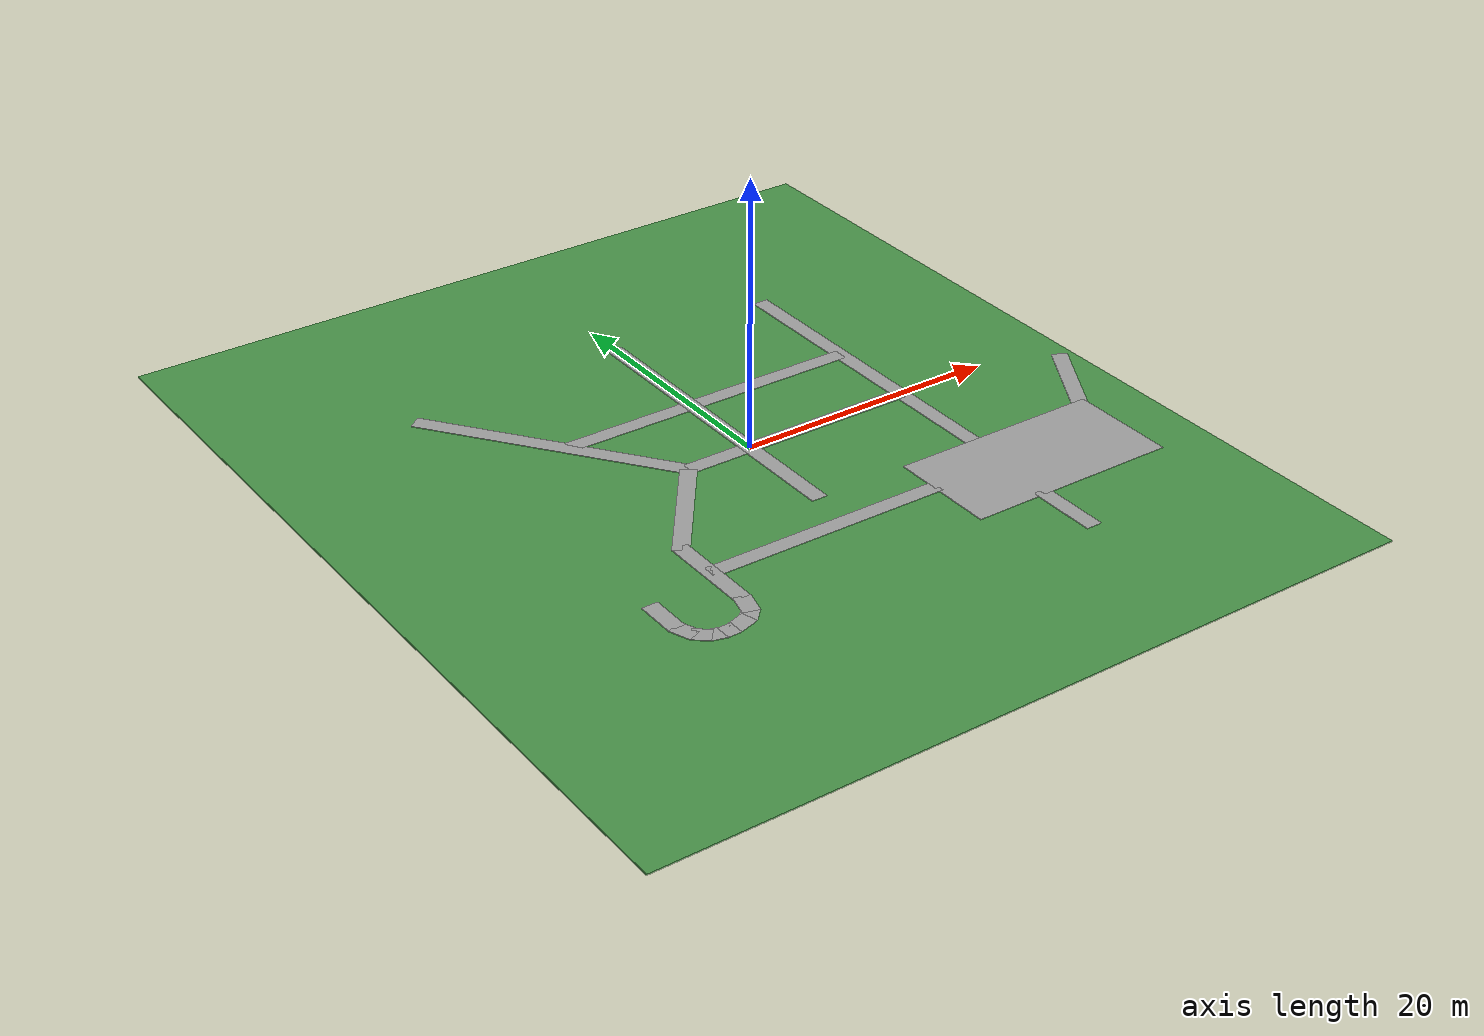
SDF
<?xml version="1.0" ?>
<sdf version="1.8">
  <world name="campus_sidewalk">

    <!-- 1. SIMULATION PHYSICS & SYSTEM PLUGINS     -->
    <physics name="1ms" type="ignored">
      <max_step_size>0.001</max_step_size>
      <real_time_factor>1.0</real_time_factor>
    </physics>

    <plugin filename="ignition-gazebo-physics-system" name="ignition::gazebo::systems::Physics"/>
    <plugin filename="ignition-gazebo-user-commands-system" name="ignition::gazebo::systems::UserCommands"/>
    <plugin filename="ignition-gazebo-scene-broadcaster-system" name="ignition::gazebo::systems::SceneBroadcaster"/>
    <plugin filename="ignition-gazebo-sensors-system" name="ignition::gazebo::systems::Sensors">
      <render_engine>ogre2</render_engine>
    </plugin>

    <!-- 2. LIGHTING & SUN                          -->
    <light type="directional" name="sun">
      <cast_shadows>true</cast_shadows>
      <pose>0 0 10 0 0 0</pose>
      <diffuse>0.8 0.8 0.8 1</diffuse>
      <specular>0.2 0.2 0.2 1</specular>
      <attenuation>
        <range>1000</range>
        <constant>0.9</constant>
        <linear>0.01</linear>
        <quadratic>0.001</quadratic>
      </attenuation>
      <direction>-0.5 0.1 -0.9</direction>
    </light>

    <!-- 3. GRASS MODEL                             -->
    <model name="grass_network">
      <static>true</static>

      <link name="grass_patch_0">
        <pose>-1.5000 0.0000 0.0 0 0 0</pose>
        <collision name="col">
          <pose>0 0 -0.0500 0 0 0</pose>
          <geometry>
            <box><size>57.0000 66.0000 0.1000</size></box>
          </geometry>
        </collision>
        <visual name="vis">
          <pose>0 0 -0.0500 0 0 0</pose>
          <geometry>
            <box><size>57.0000 66.0000 0.1000</size></box>
          </geometry>
          <material>
            <ambient>0.3 0.6 0.3 1</ambient>
            <diffuse>0.3 0.6 0.3 1</diffuse>
          </material>
          <plugin filename="ignition-gazebo-label-system" name="ignition::gazebo::systems::Label">
            <label>2</label> <!-- 2 = Grass -->
          </plugin>
        </visual>
      </link>
    </model>

    <!-- 4. SIDEWALK NETWORK                        -->
    <model name="sidewalk_network">
      <static>true</static>

      <!-- Segment 0: Length 25.00m, Width 1.20m, Height 0.05m -->
      <link name="segment_0">
        <pose>0.0000 -8.0000 0.0 0 0 1.5708</pose>
        <collision name="col">
          <pose>12.5000 0 0.0250 0 0 0</pose>
          <geometry>
            <box><size>25.0000 1.2000 0.0500</size></box>
          </geometry>
        </collision>
        <visual name="vis">
          <pose>12.5000 0 0.0250 0 0 0</pose>
          <geometry>
            <box><size>25.0000 1.2000 0.0500</size></box>
          </geometry>
          <material>
            <ambient>0.65 0.65 0.65 1</ambient>
            <diffuse>0.65 0.65 0.65 1</diffuse>
          </material>
          <plugin filename="ignition-gazebo-label-system" name="ignition::gazebo::systems::Label">
            <label>1</label> <!-- 1 = Sidewalk -->
          </plugin>
        </visual>
      </link>

      <!-- Segment 1: Length 18.00m, Width 1.20m, Height 0.05m -->
      <link name="segment_1">
        <pose>-5.0000 0.0000 0.0 0 0 0.0000</pose>
        <collision name="col">
          <pose>9.0000 0 0.0250 0 0 0</pose>
          <geometry>
            <box><size>18.0000 1.2000 0.0500</size></box>
          </geometry>
        </collision>
        <visual name="vis">
          <pose>9.0000 0 0.0250 0 0 0</pose>
          <geometry>
            <box><size>18.0000 1.2000 0.0500</size></box>
          </geometry>
          <material>
            <ambient>0.65 0.65 0.65 1</ambient>
            <diffuse>0.65 0.65 0.65 1</diffuse>
          </material>
          <plugin filename="ignition-gazebo-label-system" name="ignition::gazebo::systems::Label">
            <label>1</label> <!-- 1 = Sidewalk -->
          </plugin>
        </visual>
      </link>

      <!-- Segment 2: Length 10.00m, Width 1.20m, Height 0.05m -->
      <link name="segment_2">
        <pose>-5.0000 0.0000 0.0 0 0 -2.2143</pose>
        <collision name="col">
          <pose>5.0000 0 0.0250 0 0 0</pose>
          <geometry>
            <box><size>10.0000 1.2000 0.0500</size></box>
          </geometry>
        </collision>
        <visual name="vis">
          <pose>5.0000 0 0.0250 0 0 0</pose>
          <geometry>
            <box><size>10.0000 1.2000 0.0500</size></box>
          </geometry>
          <material>
            <ambient>0.65 0.65 0.65 1</ambient>
            <diffuse>0.65 0.65 0.65 1</diffuse>
          </material>
          <plugin filename="ignition-gazebo-label-system" name="ignition::gazebo::systems::Label">
            <label>1</label> <!-- 1 = Sidewalk -->
          </plugin>
        </visual>
      </link>

      <!-- Segment 3: Length 20.00m, Width 1.20m, Height 0.05m -->
      <link name="segment_3">
        <pose>-5.0000 0.0000 0.0 0 0 2.2143</pose>
        <collision name="col">
          <pose>10.0000 0 0.0250 0 0 0</pose>
          <geometry>
            <box><size>20.0000 1.2000 0.0500</size></box>
          </geometry>
        </collision>
        <visual name="vis">
          <pose>10.0000 0 0.0250 0 0 0</pose>
          <geometry>
            <box><size>20.0000 1.2000 0.0500</size></box>
          </geometry>
          <material>
            <ambient>0.65 0.65 0.65 1</ambient>
            <diffuse>0.65 0.65 0.65 1</diffuse>
          </material>
          <plugin filename="ignition-gazebo-label-system" name="ignition::gazebo::systems::Label">
            <label>1</label> <!-- 1 = Sidewalk -->
          </plugin>
        </visual>
      </link>

      <!-- Segment 4: Length 7.00m, Width 1.20m, Height 0.05m -->
      <link name="segment_4">
        <pose>-10.8510 -14.6075 0.0 0 0 1.5708</pose>
        <collision name="col">
          <pose>3.5000 0 0.0250 0 0 0</pose>
          <geometry>
            <box><size>7.0000 1.2000 0.0500</size></box>
          </geometry>
        </collision>
        <visual name="vis">
          <pose>3.5000 0 0.0250 0 0 0</pose>
          <geometry>
            <box><size>7.0000 1.2000 0.0500</size></box>
          </geometry>
          <material>
            <ambient>0.65 0.65 0.65 1</ambient>
            <diffuse>0.65 0.65 0.65 1</diffuse>
          </material>
          <plugin filename="ignition-gazebo-label-system" name="ignition::gazebo::systems::Label">
            <label>1</label> <!-- 1 = Sidewalk -->
          </plugin>
        </visual>
      </link>

      <!-- Segment 5: Length 23.00m, Width 1.20m, Height 0.05m -->
      <link name="segment_5">
        <pose>-10.0000 7.0000 0.0 0 0 0.0000</pose>
        <collision name="col">
          <pose>11.5000 0 0.0250 0 0 0</pose>
          <geometry>
            <box><size>23.0000 1.2000 0.0500</size></box>
          </geometry>
        </collision>
        <visual name="vis">
          <pose>11.5000 0 0.0250 0 0 0</pose>
          <geometry>
            <box><size>23.0000 1.2000 0.0500</size></box>
          </geometry>
          <material>
            <ambient>0.65 0.65 0.65 1</ambient>
            <diffuse>0.65 0.65 0.65 1</diffuse>
          </material>
          <plugin filename="ignition-gazebo-label-system" name="ignition::gazebo::systems::Label">
            <label>1</label> <!-- 1 = Sidewalk -->
          </plugin>
        </visual>
      </link>

      <!-- Segment 6: Length 25.00m, Width 1.20m, Height 0.05m -->
      <link name="segment_6">
        <pose>13.0000 -8.0000 0.0 0 0 1.5708</pose>
        <collision name="col">
          <pose>12.5000 0 0.0250 0 0 0</pose>
          <geometry>
            <box><size>25.0000 1.2000 0.0500</size></box>
          </geometry>
        </collision>
        <visual name="vis">
          <pose>12.5000 0 0.0250 0 0 0</pose>
          <geometry>
            <box><size>25.0000 1.2000 0.0500</size></box>
          </geometry>
          <material>
            <ambient>0.65 0.65 0.65 1</ambient>
            <diffuse>0.65 0.65 0.65 1</diffuse>
          </material>
          <plugin filename="ignition-gazebo-label-system" name="ignition::gazebo::systems::Label">
            <label>1</label> <!-- 1 = Sidewalk -->
          </plugin>
        </visual>
      </link>

      <!-- Segment 7: Length 1.75m, Width 1.20m, Height 0.05m -->
      <link name="segment_7">
        <pose>-10.8014 -14.4424 0.0 0 0 -1.8282</pose>
        <collision name="col">
          <pose>0.8739 0 0.0250 0 0 0</pose>
          <geometry>
            <box><size>1.7477 1.2000 0.0500</size></box>
          </geometry>
        </collision>
        <visual name="vis">
          <pose>0.8739 0 0.0250 0 0 0</pose>
          <geometry>
            <box><size>1.7477 1.2000 0.0500</size></box>
          </geometry>
          <material>
            <ambient>0.65 0.65 0.65 1</ambient>
            <diffuse>0.65 0.65 0.65 1</diffuse>
          </material>
          <plugin filename="ignition-gazebo-label-system" name="ignition::gazebo::systems::Label">
            <label>1</label> <!-- 1 = Sidewalk -->
          </plugin>
        </visual>
      </link>

      <!-- Segment 8: Length 1.21m, Width 1.20m, Height 0.05m -->
      <link name="segment_8">
        <pose>-11.0945 -15.8603 0.0 0 0 -2.3440</pose>
        <collision name="col">
          <pose>0.6068 0 0.0250 0 0 0</pose>
          <geometry>
            <box><size>1.2136 1.2000 0.0500</size></box>
          </geometry>
        </collision>
        <visual name="vis">
          <pose>0.6068 0 0.0250 0 0 0</pose>
          <geometry>
            <box><size>1.2136 1.2000 0.0500</size></box>
          </geometry>
          <material>
            <ambient>0.65 0.65 0.65 1</ambient>
            <diffuse>0.65 0.65 0.65 1</diffuse>
          </material>
          <plugin filename="ignition-gazebo-label-system" name="ignition::gazebo::systems::Label">
            <label>1</label> <!-- 1 = Sidewalk -->
          </plugin>
        </visual>
      </link>

      <!-- Segment 9: Length 1.00m, Width 1.20m, Height 0.05m -->
      <link name="segment_9">
        <pose>-13.0000 -17.0000 0.0 0 0 3.1416</pose>
        <collision name="col">
          <pose>0.5000 0 0.0250 0 0 0</pose>
          <geometry>
            <box><size>1.0000 1.2000 0.0500</size></box>
          </geometry>
        </collision>
        <visual name="vis">
          <pose>0.5000 0 0.0250 0 0 0</pose>
          <geometry>
            <box><size>1.0000 1.2000 0.0500</size></box>
          </geometry>
          <material>
            <ambient>0.65 0.65 0.65 1</ambient>
            <diffuse>0.65 0.65 0.65 1</diffuse>
          </material>
          <plugin filename="ignition-gazebo-label-system" name="ignition::gazebo::systems::Label">
            <label>1</label> <!-- 1 = Sidewalk -->
          </plugin>
        </visual>
      </link>

      <!-- Segment 10: Length 1.33m, Width 1.20m, Height 0.05m -->
      <link name="segment_10">
        <pose>-15.6686 -16.0029 0.0 0 0 -0.7102</pose>
        <collision name="col">
          <pose>0.6637 0 0.0250 0 0 0</pose>
          <geometry>
            <box><size>1.3274 1.2000 0.0500</size></box>
          </geometry>
        </collision>
        <visual name="vis">
          <pose>0.6637 0 0.0250 0 0 0</pose>
          <geometry>
            <box><size>1.3274 1.2000 0.0500</size></box>
          </geometry>
          <material>
            <ambient>0.65 0.65 0.65 1</ambient>
            <diffuse>0.65 0.65 0.65 1</diffuse>
          </material>
          <plugin filename="ignition-gazebo-label-system" name="ignition::gazebo::systems::Label">
            <label>1</label> <!-- 1 = Sidewalk -->
          </plugin>
        </visual>
      </link>

      <!-- Segment 11: Length 1.59m, Width 1.20m, Height 0.05m -->
      <link name="segment_11">
        <pose>-15.4727 -16.2787 0.0 0 0 1.9345</pose>
        <collision name="col">
          <pose>0.7951 0 0.0250 0 0 0</pose>
          <geometry>
            <box><size>1.5902 1.2000 0.0500</size></box>
          </geometry>
        </collision>
        <visual name="vis">
          <pose>0.7951 0 0.0250 0 0 0</pose>
          <geometry>
            <box><size>1.5902 1.2000 0.0500</size></box>
          </geometry>
          <material>
            <ambient>0.65 0.65 0.65 1</ambient>
            <diffuse>0.65 0.65 0.65 1</diffuse>
          </material>
          <plugin filename="ignition-gazebo-label-system" name="ignition::gazebo::systems::Label">
            <label>1</label> <!-- 1 = Sidewalk -->
          </plugin>
        </visual>
      </link>

      <!-- Segment 12: Length 3.00m, Width 1.20m, Height 0.05m -->
      <link name="segment_12">
        <pose>-16.0000 -15.0000 0.0 0 0 1.5708</pose>
        <collision name="col">
          <pose>1.5000 0 0.0250 0 0 0</pose>
          <geometry>
            <box><size>3.0000 1.2000 0.0500</size></box>
          </geometry>
        </collision>
        <visual name="vis">
          <pose>1.5000 0 0.0250 0 0 0</pose>
          <geometry>
            <box><size>3.0000 1.2000 0.0500</size></box>
          </geometry>
          <material>
            <ambient>0.65 0.65 0.65 1</ambient>
            <diffuse>0.65 0.65 0.65 1</diffuse>
          </material>
          <plugin filename="ignition-gazebo-label-system" name="ignition::gazebo::systems::Label">
            <label>1</label> <!-- 1 = Sidewalk -->
          </plugin>
        </visual>
      </link>

      <!-- Segment 13: Length 16.00m, Width 8.10m, Height 0.05m -->
      <link name="segment_13">
        <pose>7.0000 -12.0000 0.0 0 0 0.0000</pose>
        <collision name="col">
          <pose>8.0000 0 0.0250 0 0 0</pose>
          <geometry>
            <box><size>16.0000 8.1000 0.0500</size></box>
          </geometry>
        </collision>
        <visual name="vis">
          <pose>8.0000 0 0.0250 0 0 0</pose>
          <geometry>
            <box><size>16.0000 8.1000 0.0500</size></box>
          </geometry>
          <material>
            <ambient>0.65 0.65 0.65 1</ambient>
            <diffuse>0.65 0.65 0.65 1</diffuse>
          </material>
          <plugin filename="ignition-gazebo-label-system" name="ignition::gazebo::systems::Label">
            <label>1</label> <!-- 1 = Sidewalk -->
          </plugin>
        </visual>
      </link>

      <!-- Segment 14: Length 8.06m, Width 1.20m, Height 0.05m -->
      <link name="segment_14">
        <pose>22.0000 -9.0000 0.0 0 0 1.0517</pose>
        <collision name="col">
          <pose>4.0312 0 0.0250 0 0 0</pose>
          <geometry>
            <box><size>8.0623 1.2000 0.0500</size></box>
          </geometry>
        </collision>
        <visual name="vis">
          <pose>4.0312 0 0.0250 0 0 0</pose>
          <geometry>
            <box><size>8.0623 1.2000 0.0500</size></box>
          </geometry>
          <material>
            <ambient>0.65 0.65 0.65 1</ambient>
            <diffuse>0.65 0.65 0.65 1</diffuse>
          </material>
          <plugin filename="ignition-gazebo-label-system" name="ignition::gazebo::systems::Label">
            <label>1</label> <!-- 1 = Sidewalk -->
          </plugin>
        </visual>
      </link>

      <!-- Segment 15: Length 1.58m, Width 1.22m, Height 0.05m -->
      <link name="segment_15">
        <pose>-11.6855 -16.5632 0.0 0 0 -2.8495</pose>
        <collision name="col">
          <pose>0.7896 0 0.0250 0 0 0</pose>
          <geometry>
            <box><size>1.5793 1.2200 0.0500</size></box>
          </geometry>
        </collision>
        <visual name="vis">
          <pose>0.7896 0 0.0250 0 0 0</pose>
          <geometry>
            <box><size>1.5793 1.2200 0.0500</size></box>
          </geometry>
          <material>
            <ambient>0.65 0.65 0.65 1</ambient>
            <diffuse>0.65 0.65 0.65 1</diffuse>
          </material>
          <plugin filename="ignition-gazebo-label-system" name="ignition::gazebo::systems::Label">
            <label>1</label> <!-- 1 = Sidewalk -->
          </plugin>
        </visual>
      </link>

      <!-- Segment 16: Length 1.11m, Width 1.20m, Height 0.05m -->
      <link name="segment_16">
        <pose>-14.8953 -16.7384 0.0 0 0 -0.2626</pose>
        <collision name="col">
          <pose>0.5561 0 0.0250 0 0 0</pose>
          <geometry>
            <box><size>1.1121 1.2000 0.0500</size></box>
          </geometry>
        </collision>
        <visual name="vis">
          <pose>0.5561 0 0.0250 0 0 0</pose>
          <geometry>
            <box><size>1.1121 1.2000 0.0500</size></box>
          </geometry>
          <material>
            <ambient>0.65 0.65 0.65 1</ambient>
            <diffuse>0.65 0.65 0.65 1</diffuse>
          </material>
          <plugin filename="ignition-gazebo-label-system" name="ignition::gazebo::systems::Label">
            <label>1</label> <!-- 1 = Sidewalk -->
          </plugin>
        </visual>
      </link>

      <!-- Segment 17: Length 18.21m, Width 1.20m, Height 0.05m -->
      <link name="segment_17">
        <pose>-10.9173 -11.1286 0.0 0 0 -0.0042</pose>
        <collision name="col">
          <pose>9.1037 0 0.0250 0 0 0</pose>
          <geometry>
            <box><size>18.2074 1.2000 0.0500</size></box>
          </geometry>
        </collision>
        <visual name="vis">
          <pose>9.1037 0 0.0250 0 0 0</pose>
          <geometry>
            <box><size>18.2074 1.2000 0.0500</size></box>
          </geometry>
          <material>
            <ambient>0.65 0.65 0.65 1</ambient>
            <diffuse>0.65 0.65 0.65 1</diffuse>
          </material>
          <plugin filename="ignition-gazebo-label-system" name="ignition::gazebo::systems::Label">
            <label>1</label> <!-- 1 = Sidewalk -->
          </plugin>
        </visual>
      </link>

      <!-- Segment 18: Length 5.26m, Width 1.20m, Height 0.05m -->
      <link name="segment_18">
        <pose>12.5314 -20.8249 0.0 0 0 1.5708</pose>
        <collision name="col">
          <pose>2.6318 0 0.0250 0 0 0</pose>
          <geometry>
            <box><size>5.2636 1.2000 0.0500</size></box>
          </geometry>
        </collision>
        <visual name="vis">
          <pose>2.6318 0 0.0250 0 0 0</pose>
          <geometry>
            <box><size>5.2636 1.2000 0.0500</size></box>
          </geometry>
          <material>
            <ambient>0.65 0.65 0.65 1</ambient>
            <diffuse>0.65 0.65 0.65 1</diffuse>
          </material>
          <plugin filename="ignition-gazebo-label-system" name="ignition::gazebo::systems::Label">
            <label>1</label> <!-- 1 = Sidewalk -->
          </plugin>
        </visual>
      </link>
    </model>

    <!-- 5. PREDEFINED SPAWN POINTS                 -->
    <!-- Waypoint: node_0 -->
    <frame name="node_0">
      <pose>0.0000 -7.5400 0.1000 0.0000 0.0000 1.5708</pose>
    </frame>

    <!-- Waypoint: node_3 -->
    <frame name="node_3">
      <pose>-10.1000 6.8000 0.1000 0.0000 0.0000 2.2143</pose>
    </frame>

    <!-- Waypoint: node_1 -->
    <frame name="node_1">
      <pose>-0.0000 -0.0000 0.1000 0.0000 0.0000 1.5708</pose>
    </frame>

    <!-- Waypoint: node_5 -->
    <frame name="node_5">
      <pose>-0.0000 7.0000 0.1000 0.0000 0.0000 3.1353</pose>
    </frame>

    <!-- Waypoint: node_4 -->
    <frame name="node_4">
      <pose>13.0000 0.0000 0.1000 0.0000 0.0000 -1.5818</pose>
    </frame>

    <!-- Waypoint: node_10 -->
    <frame name="node_10">
      <pose>-16.0300 -12.6200 0.1000 0.0000 0.0000 -1.6151</pose>
    </frame>

    <!-- Waypoint: node_2 -->
    <frame name="node_2">
      <pose>-5.0000 0.0000 0.1000 0.0000 0.0000 2.2143</pose>
    </frame>

    <!-- Waypoint: node_11 -->
    <frame name="node_11">
      <pose>7.0800 -11.2000 0.1000 0.0000 0.0000 -0.0042</pose>
    </frame>

    <!-- Waypoint: node_6 -->
    <frame name="node_6">
      <pose>13.0000 7.0000 0.1000 0.0000 0.0000 1.5708</pose>
    </frame>

    <!-- Waypoint: node_9 -->
    <frame name="node_9">
      <pose>-16.4000 15.2000 0.1000 0.0000 0.0000 -0.8442</pose>
    </frame>

    <!-- Waypoint: node_8 -->
    <frame name="node_8">
      <pose>-0.0200 15.9800 0.1000 0.0000 0.0000 -1.5882</pose>
    </frame>

    <!-- Waypoint: node_7 -->
    <frame name="node_7">
      <pose>13.0000 16.0000 0.1000 0.0000 0.0000 -1.6277</pose>
    </frame>

    <!-- Waypoint: node_12 -->
    <frame name="node_12">
      <pose>25.6800 -2.6000 0.1000 0.0000 0.0000 -2.0371</pose>
    </frame>

    <!-- Waypoint: node_13 -->
    <frame name="node_13">
      <pose>-10.8800 -11.1500 0.1000 0.0000 0.0000 0.0000</pose>
    </frame>

    <!-- Waypoint: node_14 -->
    <frame name="node_14">
      <pose>12.5700 -20.3300 0.1000 0.0000 0.0000 1.4926</pose>
    </frame>

    <!-- Waypoint: node_18 -->
    <frame name="node_18">
      <pose>12.5500 -16.1000 0.1000 0.0000 0.0000 1.5873</pose>
    </frame>

    <!-- Waypoint: node_16 -->
    <frame name="node_16">
      <pose>13.0000 -8.0000 0.1000 0.0000 0.0000 -1.5259</pose>
    </frame>

    <!-- Waypoint: node_15 -->
    <frame name="node_15">
      <pose>22.4800 -8.2500 0.1000 0.0000 0.0000 -2.5025</pose>
    </frame>

    <!-- Waypoint: plaza1 -->
    <frame name="plaza1">
      <pose>12.8600 -11.4100 0.1000 0.0000 0.0000 0.0000</pose>
    </frame>

  </world>
</sdf>
